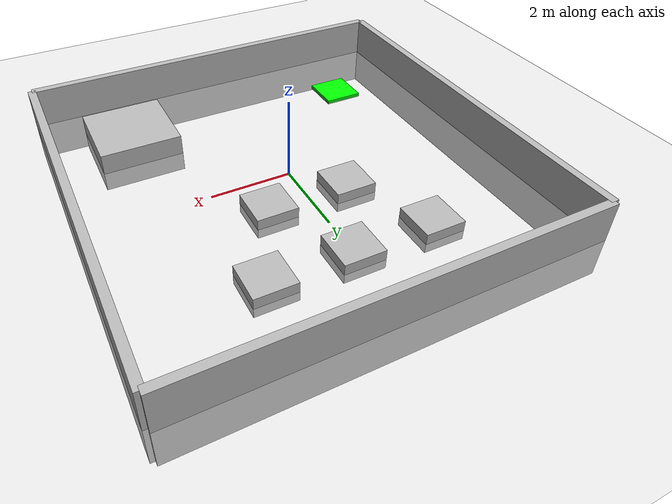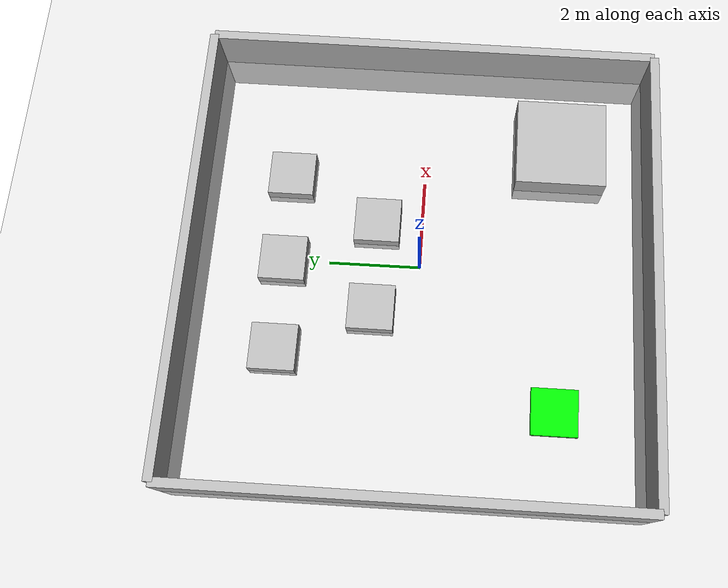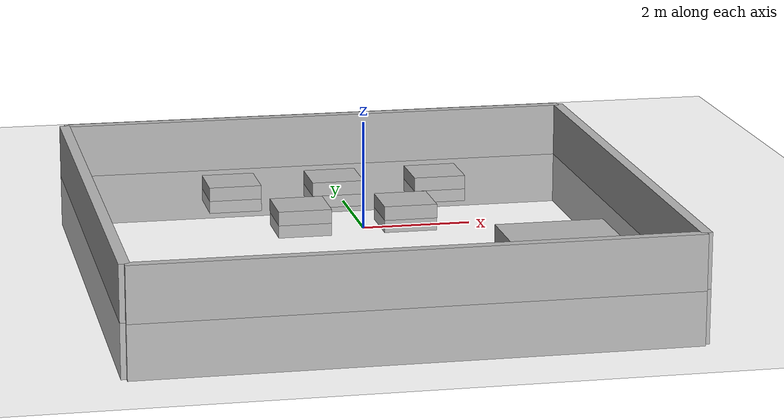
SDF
<sdf version='1.7'>
  <world name='restaurant_world'>

    <!-- Light -->
    <light name='sun' type='directional'>
      <pose>0 0 10 0 0 0</pose>
      <diffuse>0.8 0.8 0.8 1</diffuse>
      <direction>-0.5 0.1 -0.9</direction>
    </light>

    <!-- Ground -->
    <model name='ground_plane'>
      <static>1</static>
      <link name='link'>
        <collision name='collision'>
          <geometry><plane><normal>0 0 1</normal><size>12 12</size></plane></geometry>
        </collision>
        <visual name='visual'>
          <geometry><plane><normal>0 0 1</normal><size>12 12</size></plane></geometry>
        </visual>
      </link>
    </model>

    <!-- WALLS -->
    <model name='wall_1'>
      <static>1</static>
      <pose>0 -5 0 0 0 0</pose>
      <link name='link'>
        <collision><geometry><box><size>10 0.2 2</size></box></geometry></collision>
        <visual><geometry><box><size>10 0.2 2</size></box></geometry></visual>
      </link>
    </model>

    <model name='wall_2'>
      <static>1</static>
      <pose>0 5 0 0 0 0</pose>
      <link name='link'>
        <collision><geometry><box><size>10 0.2 2</size></box></geometry></collision>
        <visual><geometry><box><size>10 0.2 2</size></box></geometry></visual>
      </link>
    </model>

    <model name='wall_3'>
      <static>1</static>
      <pose>-5 0 0 0 0 0</pose>
      <link name='link'>
        <collision><geometry><box><size>0.2 10 2</size></box></geometry></collision>
        <visual><geometry><box><size>0.2 10 2</size></box></geometry></visual>
      </link>
    </model>

    <model name='wall_4'>
      <static>1</static>
      <pose>5 0 0 0 0 0</pose>
      <link name='link'>
        <collision><geometry><box><size>0.2 10 2</size></box></geometry></collision>
        <visual><geometry><box><size>0.2 10 2</size></box></geometry></visual>
      </link>
    </model>

    <!-- TABLES -->
    <!-- Row 1 -->
    <model name='table1'>
      <static>1</static>
      <pose>-2 3 0 0 0 0</pose>
      <link name='link'>
        <collision><geometry><box><size>1 1 0.5</size></box></geometry></collision>
        <visual><geometry><box><size>1 1 0.5</size></box></geometry></visual>
      </link>
    </model>

    <model name='table2'>
      <static>1</static>
      <pose>0 3 0 0 0 0</pose>
      <link name='link'>
        <collision><geometry><box><size>1 1 0.5</size></box></geometry></collision>
        <visual><geometry><box><size>1 1 0.5</size></box></geometry></visual>
      </link>
    </model>

    <model name='table3'>
      <static>1</static>
      <pose>2 3 0 0 0 0</pose>
      <link name='link'>
        <collision><geometry><box><size>1 1 0.5</size></box></geometry></collision>
        <visual><geometry><box><size>1 1 0.5</size></box></geometry></visual>
      </link>
    </model>

    <!-- Row 2 -->
    <model name='table4'>
      <static>1</static>
      <pose>-1 1 0 0 0 0</pose>
      <link name='link'>
        <collision><geometry><box><size>1 1 0.5</size></box></geometry></collision>
        <visual><geometry><box><size>1 1 0.5</size></box></geometry></visual>
      </link>
    </model>

    <model name='table5'>
      <static>1</static>
      <pose>1 1 0 0 0 0</pose>
      <link name='link'>
        <collision><geometry><box><size>1 1 0.5</size></box></geometry></collision>
        <visual><geometry><box><size>1 1 0.5</size></box></geometry></visual>
      </link>
    </model>

    <!-- KITCHEN -->
    <model name='kitchen'>
      <static>1</static>
      <pose>3 -3 0 0 0 0</pose>
      <link name='link'>
        <collision><geometry><box><size>2 2 1</size></box></geometry></collision>
        <visual><geometry><box><size>2 2 1</size></box></geometry></visual>
      </link>
    </model>

    <!-- ROBOT START AREA (visual marker) -->
    <model name='robot_zone'>
      <static>1</static>
      <pose>-3 -3 0 0 0 0</pose>
      <link name='link'>
        <visual name='visual'>
          <geometry><box><size>1 1 0.1</size></box></geometry>
          <material>
            <ambient>0 1 0 1</ambient>
          </material>
        </visual>
      </link>
    </model>

  </world>
</sdf>
